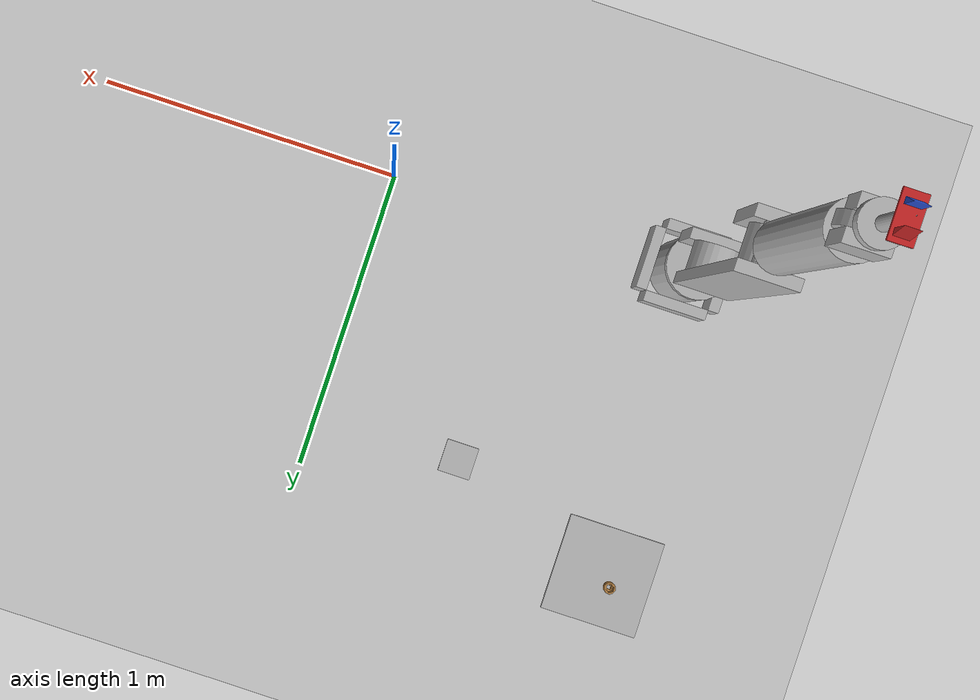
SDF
<?xml version="1.0" encoding="UTF-8"?>
<sdf version="1.4">
   <world name="default">
      <!-- Ground Plane -->
      <include>
         <uri>model://sun</uri>
      </include>

		<include>
			<uri>model://ground_plane</uri>
		</include>
      <scene>
         <sky>
            <clouds>
               <ambient>.5 .5 .5 1</ambient>
            </clouds>
         </sky>

      </scene>

<!--****以上是場景*******************************************-->

      <include>
<pose>-1 0 0 0 0 0</pose>
         <uri>/home/kevin/research/gazebo/Arm_Control2/model/6axistest</uri>
      </include>
      <include>
<pose>-1 0 0 0 0 0</pose>
         <uri>/home/kevin/research/gazebo/Arm_Control2/model/fixer</uri>
      </include>

      <include>
<pose>-1 1 0.000000 0.000000 0.000000 0.000000</pose>
         <uri>/home/kevin/research/gazebo/evaluation_platform/models/table</uri>
      </include>

      <include>

<pose>-0.47 0.8 0.000000 0.000000 0.000000 0.000000</pose>
         <uri>/home/kevin/research/gazebo/evaluation_platform/models/smalltable</uri>
      </include>

      <include>

<pose>-1.025 1.025 0.51 3.14 0.000000 0.00000</pose>
         <uri>/home/kevin/research/gazebo/Arm_Control2/model/socket_simple</uri>
      </include>

   </world>
</sdf>
